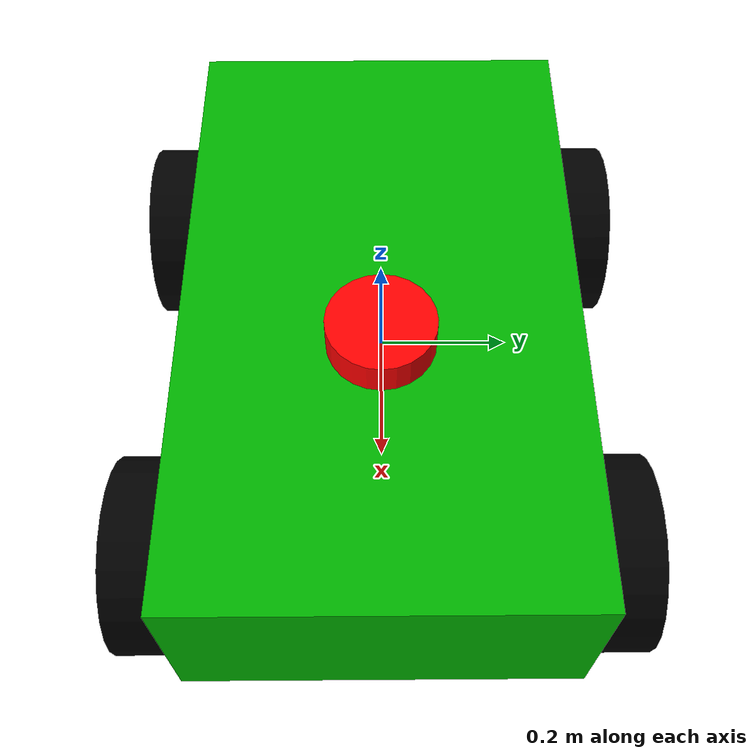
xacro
<?xml version="1.0"?>

<robot name="differential_drive_robot" xmlns:xacro="http://www.ros.org/wiki/xacro">

<!---materials definitions-->
<material name="green">
    <color rgba="0.0 0.7 0.0 1.0"/>
</material>

<material name="blue">
<color rgba="0.0 0.0 1.0 1.0"/>
</material>

<material name="red">
    <color rgba="1.0 0.0 0.0 1.0"/>
</material>

<material name="white">
    <color rgba="1.0 1.0 1.0 1.0"/>
</material>

<material name="black">
    <color rgba="0.0 0.0 0.0 1.0"/>
</material>

<!-- Body Dimensions -->
<xacro:property name="body_link_x_dim" value="1"/>
<xacro:property name="body_link_y_dim" value="0.6"/>
<xacro:property name="body_link_z_dim" value="0.3"/>

<!-- Wheel Dimensions & Location -->
<xacro:property name="wheel_link_radius" value="0.15"/>
<xacro:property name="wheel_link_length" value="0.1"/>
<xacro:property name="wheel_link_z_location" value="-0.1"/>

<!-- Material Density -->
<xacro:property name="body_density" value="2710.0"/>
<xacro:property name="wheel_density" value="2710.0"/>

<!-- Pi Constant -->
<xacro:property name="pi_const" value="3.14159265"/>

<!-- Robot Body Mass, Wheel Mass -->
<xacro:property name="body_mass" value="${body_density*body_link_x_dim*body_link_y_dim*body_link_z_dim}"/>
<xacro:property name="wheel_mass" value="${wheel_density*pi_const*wheel_link_radius*wheel_link_radius*wheel_link_length}"/>

<!-- Moment of inertia of the Wheel -->
<xacro:property name="Iz_wheel" value="${0.5*wheel_mass*wheel_link_radius*wheel_link_radius}"/>
<xacro:property name="I_wheel" value="${(1.0/12.0)*wheel_mass*(3.0*wheel_link_radius*wheel_link_radius+wheel_link_length*wheel_link_length)}"/>

<!-- This Macro defines the complete Inertial Section of the Wheel -->
<xacro:macro name="inertia_wheel">
   <inertial>
    <orgin rpy="0 0 0" xyz="0 0 0"/>
    <mass value="${wheel_mass}"/>
    <inertia ixx="${I_wheel}" ixy="0.0" ixz="0.0" iyy="${I_wheel}" iyz="0.0" izz="${Iz_wheel}"/>
   </inertial>
</xacro:macro>

<!-- Defining Links & Joints of Robot -->

<!-- Dummy Link -->
<link name="dummy">
</link>
<joint name="dummy_joint" type="fixed">
   <parent link="dummy"/>
   <child link="body_link"/>
</joint>

<!-- Body Link of the Robot -->
<link name="body_link">
   <visual>
      <geometry>
         <box size="${body_link_x_dim} ${body_link_y_dim} ${body_link_z_dim}" />
      </geometry>
      <orgin rpy="0 0 0" xyz="0 0 0"/>
      <material name="green"/>
   </visual>

   <collision>
      <geometry>
         <box size="${body_link_x_dim} ${body_link_y_dim} ${body_link_z_dim}" />
      </geometry>
      <orgin rpy="0 0 0" xyz="0 0 0"/>
   </collision>

   <inertial>
      <orgin rpy="0 0 0" xyz="0 0 0"/>
      <mass value="${body_mass}"/>
      <inertia ixx="${(1/12)*body_mass*(body_link_y_dim*body_link_y_dim+body_link_z_dim*body_link_z_dim)}" ixy="0" ixz="0" iyy="${(1/12)*body_mass*(body_link_x_dim*body_link_x_dim+body_link_z_dim*body_link_z_dim)}" iyz="0" izz="${(1/12)*body_mass*(body_link_y_dim*body_link_y_dim+body_link_x_dim*body_link_x_dim)}" />
   </inertial>
</link>

<!-- Back Right Wheel Link & it's Joint -->
<joint name="wheel1_joint" type="continuous" >
   <parent link="body_link"/>
   <child link="wheel1_link"/>
   <origin xyz="${-body_link_x_dim/2+1.2*wheel_link_radius} ${-body_link_y_dim/2-wheel_link_length/2} ${wheel_link_z_location}" rpy="0 0 0" />
   <axis xyz="0 1 0"/>
   <limit effort="1000" velocity="1000"/>
   <dynamics damping="1.0" friction="1.0"/>
</joint>

<link name="wheel1_link">
   <visual>
     <origin rpy="1.570795 0 0" xyz="0 0 0"/>
     <geometry>
        <cylinder length="${wheel_link_length}" radius="${wheel_link_radius}"/>
     </geometry>
     <material name="black"/>
   </visual>

   <collision>
     <origin rpy="1.570795 0 0" xyz="0 0 0"/>
     <geometry>
        <cylinder length="${wheel_link_length}" radius="${wheel_link_radius}"/>
     </geometry>
   </collision>

   <xacro:inertia_wheel />
</link>

<!-- Back Left Wheel Link & it's Joint -->
<joint name="wheel2_joint" type="continuous" >
   <parent link="body_link"/>
   <child link="wheel2_link"/>
   <origin xyz="${-body_link_x_dim/2+1.2*wheel_link_radius} ${body_link_y_dim/2+wheel_link_length/2} ${wheel_link_z_location}" rpy="0 0 0" />
   <axis xyz="0 1 0"/>
   <limit effort="1000" velocity="1000"/>
   <dynamics damping="1.0" friction="1.0"/>
</joint>

<link name="wheel2_link">
   <visual>
     <origin rpy="1.570795 0 0" xyz="0 0 0"/>
     <geometry>
        <cylinder length="${wheel_link_length}" radius="${wheel_link_radius}"/>
     </geometry>
     <material name="black"/>
   </visual>

   <collision>
     <origin rpy="1.570795 0 0" xyz="0 0 0"/>
     <geometry>
        <cylinder length="${wheel_link_length}" radius="${wheel_link_radius}"/>
     </geometry>
   </collision>

   <xacro:inertia_wheel />
</link>

<!-- Front Right Wheel Link & it's Joint -->
<joint name="wheel3_joint" type="continuous" >
   <parent link="body_link"/>
   <child link="wheel3_link"/>
   <origin xyz="${body_link_x_dim/2-1.2*wheel_link_radius} ${-body_link_y_dim/2-wheel_link_length/2} ${wheel_link_z_location}" rpy="0 0 0" />
   <axis xyz="0 1 0"/>
   <limit effort="1000" velocity="1000"/>
   <dynamics damping="1.0" friction="1.0"/>
</joint>

<link name="wheel3_link">
   <visual>
     <origin rpy="1.570795 0 0" xyz="0 0 0"/>
     <geometry>
        <cylinder length="${wheel_link_length}" radius="${wheel_link_radius}"/>
     </geometry>
     <material name="black"/>
   </visual>

   <collision>
     <origin rpy="1.570795 0 0" xyz="0 0 0"/>
     <geometry>
        <cylinder length="${wheel_link_length}" radius="${wheel_link_radius}"/>
     </geometry>
   </collision>

   <xacro:inertia_wheel />
</link>

<!-- Front Left Wheel Link & it's Joint -->
<joint name="wheel4_joint" type="continuous" >
   <parent link="body_link"/>
   <child link="wheel4_link"/>
   <origin xyz="${body_link_x_dim/2-1.2*wheel_link_radius} ${body_link_y_dim/2+wheel_link_length/2} ${wheel_link_z_location}" rpy="0 0 0" />
   <axis xyz="0 1 0"/>
   <limit effort="1000" velocity="1000"/>
   <dynamics damping="1.0" friction="1.0"/>
</joint>

<link name="wheel4_link">
   <visual>
     <origin rpy="1.570795 0 0" xyz="0 0 0"/>
     <geometry>
        <cylinder length="${wheel_link_length}" radius="${wheel_link_radius}"/>
     </geometry>
     <material name="black"/>
   </visual>

   <collision>
     <origin rpy="1.570795 0 0" xyz="0 0 0"/>
     <geometry>
        <cylinder length="${wheel_link_length}" radius="${wheel_link_radius}"/>
     </geometry>
   </collision>

   <xacro:inertia_wheel />
</link>

 <gazebo>
    <plugin filename="ign_ros2_control-system" name="ign_ros2_control::IgnitionROS2ControlPlugin">
      <parameters>$(find testbot)/config/test4w.yaml</parameters>
    </plugin>
  </gazebo>

  <!--Control ad gazebo control interface-->
    <ros2_control name="IgnitionSystem" type="system">
    <hardware>
      <plugin>ign_ros2_control/IgnitionSystem</plugin>
    </hardware>
    <joint name="wheel1_joint">
      <command_interface name="velocity">
        <param name="min">-1</param>
        <param name="max">1</param>
      </command_interface>
      <state_interface name="position"/>
      <state_interface name="velocity"/>
    </joint>
    <joint name="wheel2_joint">
      <command_interface name="velocity">
        <param name="min">-1</param>
        <param name="max">1</param>
      </command_interface>
      <state_interface name="position"/>
      <state_interface name="velocity"/>
    </joint>
    <joint name="wheel3_joint">
      <command_interface name="velocity">
        <param name="min">-1</param>
        <param name="max">1</param>
      </command_interface>
      <state_interface name="position"/>
      <state_interface name="velocity"/>
    </joint>
    <joint name="wheel4_joint">
      <command_interface name="velocity">
        <param name="min">-1</param>
        <param name="max">1</param>
      </command_interface>
      <state_interface name="position"/>
      <state_interface name="velocity"/>
    </joint>
  </ros2_control>

<!--Lidar Joint and properties-->

<link name="laser_frame">
    <visual>
        <geometry>
            <cylinder radius="0.0808" length="0.055"/>
        </geometry>
        <material name="red"/>
    </visual>
    <collision>
        <geometry>
            <cylinder radius="0.0808" length="0.055"/>
        </geometry>
    </collision>
    <inertial>
            <mass value="1.0"/>
            <inertia ixx="0.001458" iyy="0.001458" izz="0.00125" ixy="0.0" ixz="0.0" iyz="0.0"/>
    </inertial>
</link>

<joint name="laser_joint" type="fixed">
        <parent link="body_link"/>
        <child link="laser_frame"/>
        <origin xyz="0.1 0 0.185" rpy="0 0 0"/>
    </joint>
<gazebo reference="laser_frame">

    <sensor name="lidar" type="gpu_lidar">
      <ignition_frame_id>laser_frame</ignition_frame_id>
      <topic>lidar</topic>
      <always_on>true</always_on>
      <visualize>true</visualize>
      <update_rate>10</update_rate>
      <ray>
        <scan>
          <horizontal>
            <samples>360</samples>
            <resolution>1.000000</resolution>
            <min_angle>-3.1400000</min_angle>
            <max_angle>3.14</max_angle>
          </horizontal>
        </scan>
        <range>
          <min>0.3</min>
          <max>12</max>
          <resolution>0.015000</resolution>
        </range>
        <noise>
          <type>gaussian</type>
          <mean>0.0</mean>
          <stddev>0.01</stddev>
        </noise>
      </ray>

    </sensor>
  </gazebo>
</robot>
